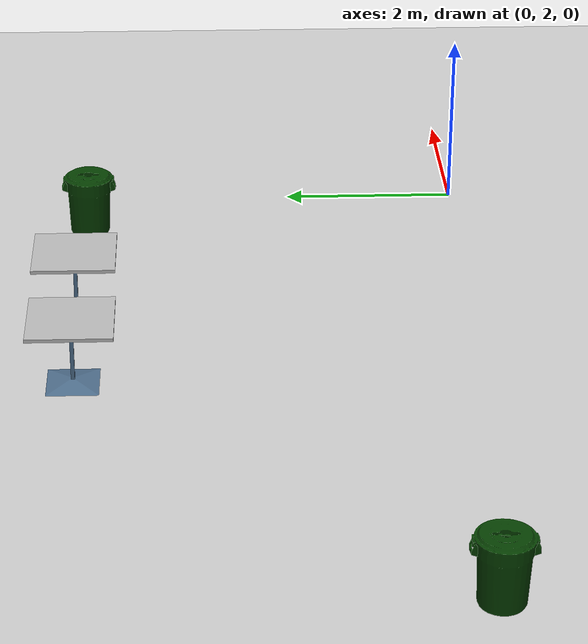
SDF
<sdf version="1.7">
 <world name="default">
  <model name="ground_plane">
   <static>1</static>
   <link name="link">
    <collision name="collision">
     <geometry><plane><normal>0 0 1</normal><size>100 100</size></plane></geometry>
     <surface><friction><ode><mu>100</mu><mu2>50</mu2></ode></friction></surface>
    </collision>
    <visual name="visual">
     <cast_shadows>0</cast_shadows>
     <geometry><plane><normal>0 0 1</normal><size>100 100</size></plane></geometry>
     <material>
      <script><uri>file://media/materials/scripts/gazebo.material</uri><name>Gazebo/Grey</name></script>
     </material>
    </visual>
   </link>
  </model>
  <light name="sun" type="directional">
   <pose>0 0 10 0 -0 0</pose>
   <diffuse>0.8 0.8 0.8 1</diffuse>
   <specular>0.2 0.2 0.2 1</specular>
   <attenuation>
    <range>1000</range>
    <constant>0.9</constant>
    <linear>0.01</linear>
    <quadratic>0.001</quadratic>
   </attenuation>
   <direction>-0.5 0.1 -0.9</direction>
   <spot><inner_angle>0</inner_angle><outer_angle>0</outer_angle><falloff>0</falloff></spot>
  </light>
  <scene><shadows>0</shadows><ambient>0.4 0.4 0.4 1</ambient><background>0.7 0.7 0.7 1</background></scene>
  <physics type="ode">
   <real_time_update_rate>1000</real_time_update_rate>
   <max_step_size>0.001</max_step_size>
   <real_time_factor>1</real_time_factor>
   <ode>
    <solver>
     <type>quick</type>
     <iters>150</iters>
     <precon_iters>0</precon_iters>
     <sor>1.4</sor>
     <use_dynamic_moi_rescaling>1</use_dynamic_moi_rescaling>
    </solver>
    <constraints>
     <cfm>1e-05</cfm>
     <erp>0.2</erp>
     <contact_max_correcting_vel>2000</contact_max_correcting_vel>
     <contact_surface_layer>0.01</contact_surface_layer>
    </constraints>
   </ode>
  </physics>
  <gravity>0 0 -9.8</gravity>
  <magnetic_field>6e-06 2.3e-05 -4.2e-05</magnetic_field>
  <atmosphere type="adiabatic"/>
  <audio><device>default</device></audio>
  <spherical_coordinates>
   <surface_model>EARTH_WGS84</surface_model>
   <latitude_deg>0</latitude_deg>
   <longitude_deg>0</longitude_deg>
   <elevation>0</elevation>
   <heading_deg>0</heading_deg>
  </spherical_coordinates>
  <model name="cafe_table">
   <static>1</static>
   <link name="link">
    <collision name="surface">
     <pose>0 0 0.755 0 -0 0</pose>
     <geometry><box><size>0.913 0.913 0.04</size></box></geometry>
    </collision>
    <collision name="column">
     <pose>0 0 0.37 0 -0 0</pose>
     <geometry><box><size>0.042 0.042 0.74</size></box></geometry>
    </collision>
    <collision name="base">
     <pose>0 0 0.02 0 -0 0</pose>
     <geometry><box><size>0.56 0.56 0.04</size></box></geometry>
    </collision>
    <visual name="visual">
     <geometry><mesh><uri>model://cafe_table/meshes/cafe_table.dae</uri></mesh></geometry>
    </visual>
   </link>
   <pose>-2.93733 6.47299 0 0 -0 0</pose>
  </model>
  <model name="first_2015_trash_can">
   <link name="link">
    <inertial>
     <pose>0 0 0.3683 0 -0 0</pose>
     <mass>4.83076</mass>
     <inertia>
      <ixx>0.281534</ixx>
      <ixy>0</ixy>
      <ixz>0</ixz>
      <iyy>0.281534</iyy>
      <iyz>0</iyz>
      <izz>0.126223</izz>
     </inertia>
    </inertial>
    <visual name="visual">
     <geometry><mesh><uri>model://first_2015_trash_can/meshes/trash_can.dae</uri></mesh></geometry>
    </visual>
    <collision name="collision">
     <geometry><mesh><uri>model://first_2015_trash_can/meshes/trash_can.dae</uri></mesh></geometry>
    </collision>
   </link>
   <pose>-0.839438 6.39583 -4e-06 -1e-06 5e-06 -8.2e-05</pose>
  </model>
  <model name="cafe_table_0">
   <static>1</static>
   <link name="link">
    <collision name="surface">
     <pose>0 0 0.755 0 -0 0</pose>
     <geometry><box><size>0.913 0.913 0.04</size></box></geometry>
    </collision>
    <collision name="column">
     <pose>0 0 0.37 0 -0 0</pose>
     <geometry><box><size>0.042 0.042 0.74</size></box></geometry>
    </collision>
    <collision name="base">
     <pose>0 0 0.02 0 -0 0</pose>
     <geometry><box><size>0.56 0.56 0.04</size></box></geometry>
    </collision>
    <visual name="visual">
     <geometry><mesh><uri>model://cafe_table/meshes/cafe_table.dae</uri></mesh></geometry>
    </visual>
   </link>
   <pose>-4.45613 6.45006 0 0 -0 0</pose>
  </model>
  <model name="first_2015_trash_can_0">
   <link name="link">
    <inertial>
     <pose>0 0 0.3683 0 -0 0</pose>
     <mass>4.83076</mass>
     <inertia>
      <ixx>0.281534</ixx>
      <ixy>0</ixy>
      <ixz>0</ixz>
      <iyy>0.281534</iyy>
      <iyz>0</iyz>
      <izz>0.126223</izz>
     </inertia>
    </inertial>
    <visual name="visual">
     <geometry><mesh><uri>model://first_2015_trash_can/meshes/trash_can.dae</uri></mesh></geometry>
    </visual>
    <collision name="collision">
     <geometry><mesh><uri>model://first_2015_trash_can/meshes/trash_can.dae</uri></mesh></geometry>
    </collision>
   </link>
   <pose>-8.46993 2.44152 -4e-06 -9e-06 1.9e-05 -2.7e-05</pose>
  </model>
 </world>
</sdf>
